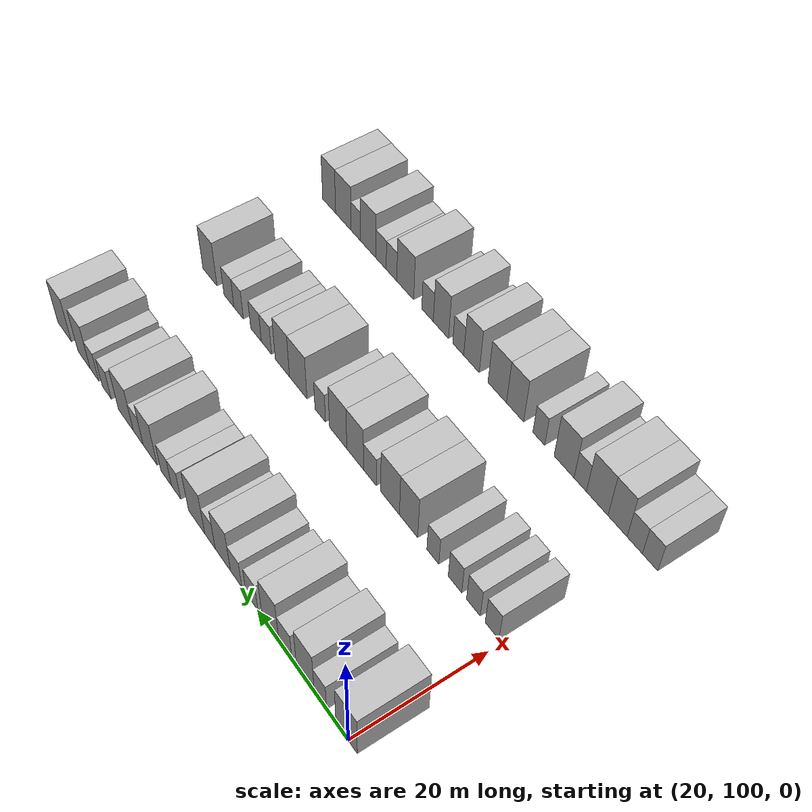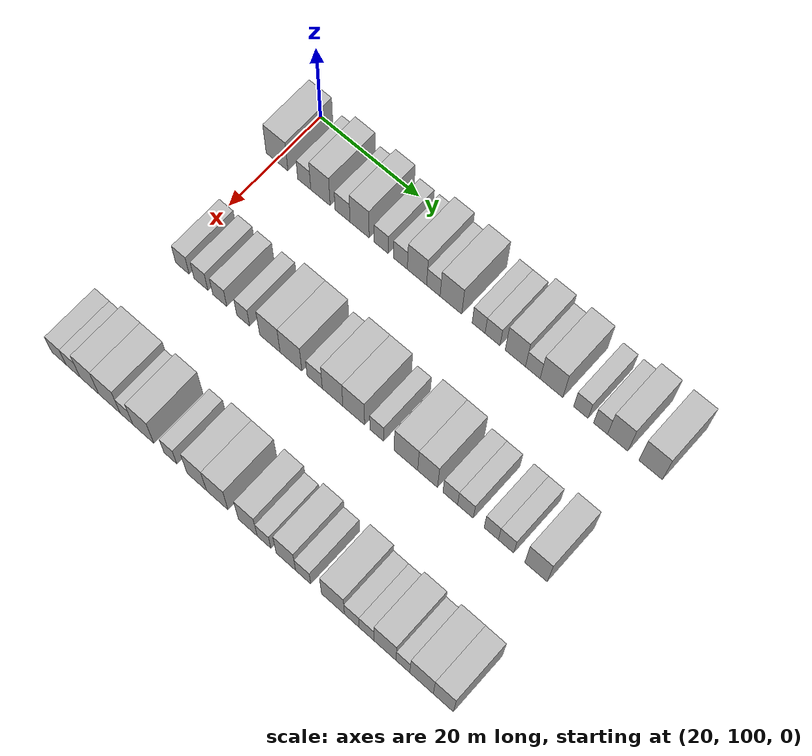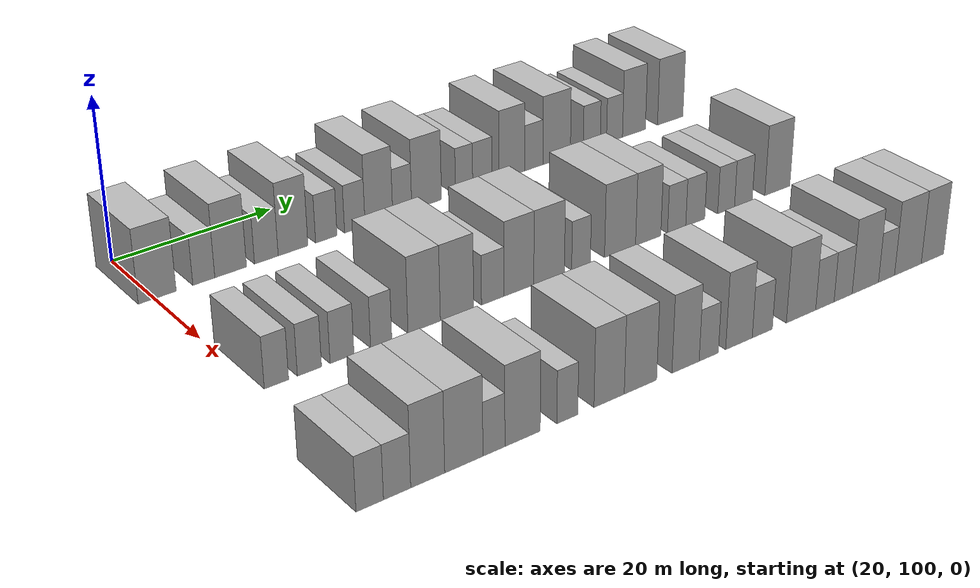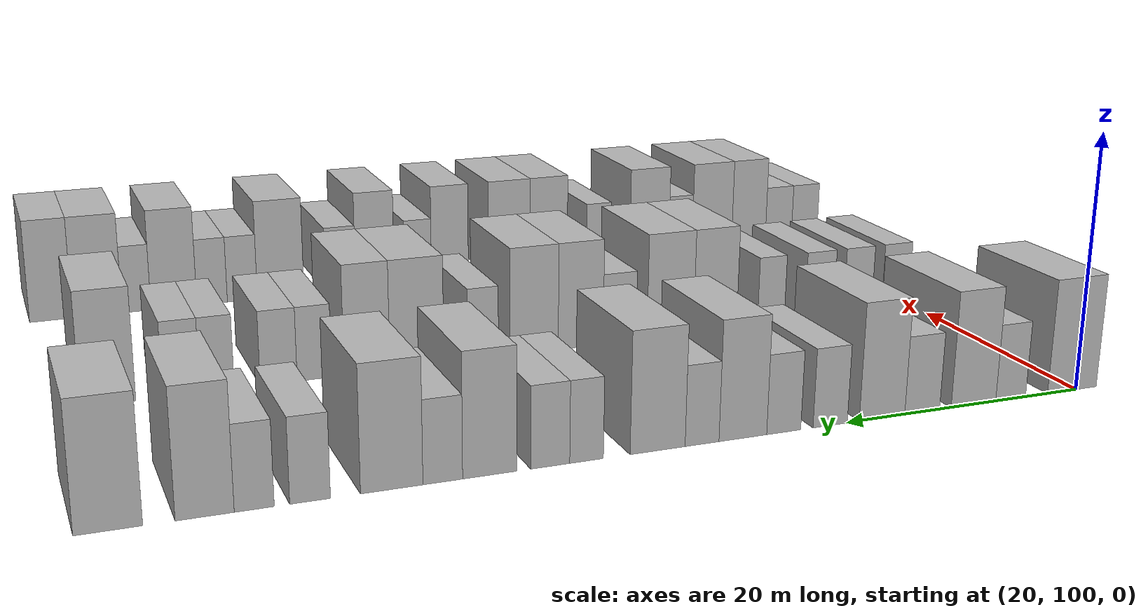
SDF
<sdf version="1.6">
 <world name="default">
  <model name="building_93">
   <static>1</static>
   <pose>25.0000 100.3363 0 0.000000 0.000000 0.000000</pose>
   <link name="link">
    <pose>0 0 4.50 0 0 0</pose>
    <collision name="collision"><geometry><box><size>10.0000 4.4751 9.0000</size></box></geometry></collision>
    <visual name="visual">
     <cast_shadows>0</cast_shadows>
     <geometry><box><size>10.0000 4.4751 9.0000</size></box></geometry>
     <material>
      <script>
       <uri>model://HANNAS_wall/materials/scripts</uri>
       <uri>model://HANNAS_wall/materials/textures</uri>
       <name>vrc/HANNAS_wall</name>
      </script>
     </material>
    </visual>
   </link>
  </model>
  <model name="building_94">
   <static>1</static>
   <pose>25.0000 105.9063 0 0.000000 0.000000 0.000000</pose>
   <link name="link">
    <pose>0 0 3.00 0 0 0</pose>
    <collision name="collision"><geometry><box><size>10.0000 2.6651 6.0000</size></box></geometry></collision>
    <visual name="visual">
     <cast_shadows>0</cast_shadows>
     <geometry><box><size>10.0000 2.6651 6.0000</size></box></geometry>
     <material>
      <script>
       <uri>model://HANNAS_wall/materials/scripts</uri>
       <uri>model://HANNAS_wall/materials/textures</uri>
       <name>vrc/HANNAS_wall</name>
      </script>
     </material>
    </visual>
   </link>
  </model>
  <model name="building_95">
   <static>1</static>
   <pose>25.0000 109.1983 0 0.000000 0.000000 0.000000</pose>
   <link name="link">
    <pose>0 0 4.50 0 0 0</pose>
    <collision name="collision"><geometry><box><size>10.0000 3.9188 9.0000</size></box></geometry></collision>
    <visual name="visual">
     <cast_shadows>0</cast_shadows>
     <geometry><box><size>10.0000 3.9188 9.0000</size></box></geometry>
     <material>
      <script>
       <uri>model://HANNAS_wall/materials/scripts</uri>
       <uri>model://HANNAS_wall/materials/textures</uri>
       <name>vrc/HANNAS_wall</name>
      </script>
     </material>
    </visual>
   </link>
  </model>
  <model name="building_96">
   <static>1</static>
   <pose>25.0000 113.6531 0 0.000000 0.000000 0.000000</pose>
   <link name="link">
    <pose>0 0 3.00 0 0 0</pose>
    <collision name="collision"><geometry><box><size>10.0000 2.9909 6.0000</size></box></geometry></collision>
    <visual name="visual">
     <cast_shadows>0</cast_shadows>
     <geometry><box><size>10.0000 2.9909 6.0000</size></box></geometry>
     <material>
      <script>
       <uri>model://HANNAS_wall/materials/scripts</uri>
       <uri>model://HANNAS_wall/materials/textures</uri>
       <name>vrc/HANNAS_wall</name>
      </script>
     </material>
    </visual>
   </link>
  </model>
  <model name="building_97">
   <static>1</static>
   <pose>25.0000 117.0629 0 0.000000 0.000000 0.000000</pose>
   <link name="link">
    <pose>0 0 4.50 0 0 0</pose>
    <collision name="collision"><geometry><box><size>10.0000 3.8287 9.0000</size></box></geometry></collision>
    <visual name="visual">
     <cast_shadows>0</cast_shadows>
     <geometry><box><size>10.0000 3.8287 9.0000</size></box></geometry>
     <material>
      <script>
       <uri>model://HANNAS_wall/materials/scripts</uri>
       <uri>model://HANNAS_wall/materials/textures</uri>
       <name>vrc/HANNAS_wall</name>
      </script>
     </material>
    </visual>
   </link>
  </model>
  <model name="building_98">
   <static>1</static>
   <pose>25.0000 121.3862 0 0.000000 0.000000 0.000000</pose>
   <link name="link">
    <pose>0 0 3.00 0 0 0</pose>
    <collision name="collision"><geometry><box><size>10.0000 2.8179 6.0000</size></box></geometry></collision>
    <visual name="visual">
     <cast_shadows>0</cast_shadows>
     <geometry><box><size>10.0000 2.8179 6.0000</size></box></geometry>
     <material>
      <script>
       <uri>model://HANNAS_wall/materials/scripts</uri>
       <uri>model://HANNAS_wall/materials/textures</uri>
       <name>vrc/HANNAS_wall</name>
      </script>
     </material>
    </visual>
   </link>
  </model>
  <model name="building_99">
   <static>1</static>
   <pose>25.0000 125.1654 0 0.000000 0.000000 0.000000</pose>
   <link name="link">
    <pose>0 0 3.00 0 0 0</pose>
    <collision name="collision"><geometry><box><size>10.0000 2.7405 6.0000</size></box></geometry></collision>
    <visual name="visual">
     <cast_shadows>0</cast_shadows>
     <geometry><box><size>10.0000 2.7405 6.0000</size></box></geometry>
     <material>
      <script>
       <uri>model://HANNAS_wall/materials/scripts</uri>
       <uri>model://HANNAS_wall/materials/textures</uri>
       <name>vrc/HANNAS_wall</name>
      </script>
     </material>
    </visual>
   </link>
  </model>
  <model name="building_100">
   <static>1</static>
   <pose>25.0000 128.4216 0 0.000000 0.000000 0.000000</pose>
   <link name="link">
    <pose>0 0 4.50 0 0 0</pose>
    <collision name="collision"><geometry><box><size>10.0000 3.7720 9.0000</size></box></geometry></collision>
    <visual name="visual">
     <cast_shadows>0</cast_shadows>
     <geometry><box><size>10.0000 3.7720 9.0000</size></box></geometry>
     <material>
      <script>
       <uri>model://HANNAS_wall/materials/scripts</uri>
       <uri>model://HANNAS_wall/materials/textures</uri>
       <name>vrc/HANNAS_wall</name>
      </script>
     </material>
    </visual>
   </link>
  </model>
  <model name="building_101">
   <static>1</static>
   <pose>25.0000 131.6220 0 0.000000 0.000000 0.000000</pose>
   <link name="link">
    <pose>0 0 3.00 0 0 0</pose>
    <collision name="collision"><geometry><box><size>10.0000 2.6289 6.0000</size></box></geometry></collision>
    <visual name="visual">
     <cast_shadows>0</cast_shadows>
     <geometry><box><size>10.0000 2.6289 6.0000</size></box></geometry>
     <material>
      <script>
       <uri>model://HANNAS_wall/materials/scripts</uri>
       <uri>model://HANNAS_wall/materials/textures</uri>
       <name>vrc/HANNAS_wall</name>
      </script>
     </material>
    </visual>
   </link>
  </model>
  <model name="building_102">
   <static>1</static>
   <pose>25.0000 135.0297 0 0.000000 0.000000 0.000000</pose>
   <link name="link">
    <pose>0 0 4.50 0 0 0</pose>
    <collision name="collision"><geometry><box><size>10.0000 4.1864 9.0000</size></box></geometry></collision>
    <visual name="visual">
     <cast_shadows>0</cast_shadows>
     <geometry><box><size>10.0000 4.1864 9.0000</size></box></geometry>
     <material>
      <script>
       <uri>model://HANNAS_wall/materials/scripts</uri>
       <uri>model://HANNAS_wall/materials/textures</uri>
       <name>vrc/HANNAS_wall</name>
      </script>
     </material>
    </visual>
   </link>
  </model>
  <model name="building_103">
   <static>1</static>
   <pose>25.0000 140.3640 0 0.000000 0.000000 0.000000</pose>
   <link name="link">
    <pose>0 0 3.00 0 0 0</pose>
    <collision name="collision"><geometry><box><size>10.0000 2.4822 6.0000</size></box></geometry></collision>
    <visual name="visual">
     <cast_shadows>0</cast_shadows>
     <geometry><box><size>10.0000 2.4822 6.0000</size></box></geometry>
     <material>
      <script>
       <uri>model://HANNAS_wall/materials/scripts</uri>
       <uri>model://HANNAS_wall/materials/textures</uri>
       <name>vrc/HANNAS_wall</name>
      </script>
     </material>
    </visual>
   </link>
  </model>
  <model name="building_104">
   <static>1</static>
   <pose>25.0000 143.0253 0 0.000000 0.000000 0.000000</pose>
   <link name="link">
    <pose>0 0 3.00 0 0 0</pose>
    <collision name="collision"><geometry><box><size>10.0000 2.8404 6.0000</size></box></geometry></collision>
    <visual name="visual">
     <cast_shadows>0</cast_shadows>
     <geometry><box><size>10.0000 2.8404 6.0000</size></box></geometry>
     <material>
      <script>
       <uri>model://HANNAS_wall/materials/scripts</uri>
       <uri>model://HANNAS_wall/materials/textures</uri>
       <name>vrc/HANNAS_wall</name>
      </script>
     </material>
    </visual>
   </link>
  </model>
  <model name="building_105">
   <static>1</static>
   <pose>25.0000 147.3589 0 0.000000 0.000000 0.000000</pose>
   <link name="link">
    <pose>0 0 4.50 0 0 0</pose>
    <collision name="collision"><geometry><box><size>10.0000 3.8269 9.0000</size></box></geometry></collision>
    <visual name="visual">
     <cast_shadows>0</cast_shadows>
     <geometry><box><size>10.0000 3.8269 9.0000</size></box></geometry>
     <material>
      <script>
       <uri>model://HANNAS_wall/materials/scripts</uri>
       <uri>model://HANNAS_wall/materials/textures</uri>
       <name>vrc/HANNAS_wall</name>
      </script>
     </material>
    </visual>
   </link>
  </model>
  <model name="building_106">
   <static>1</static>
   <pose>25.0000 150.6498 0 0.000000 0.000000 0.000000</pose>
   <link name="link">
    <pose>0 0 3.00 0 0 0</pose>
    <collision name="collision"><geometry><box><size>10.0000 2.7548 6.0000</size></box></geometry></collision>
    <visual name="visual">
     <cast_shadows>0</cast_shadows>
     <geometry><box><size>10.0000 2.7548 6.0000</size></box></geometry>
     <material>
      <script>
       <uri>model://HANNAS_wall/materials/scripts</uri>
       <uri>model://HANNAS_wall/materials/textures</uri>
       <name>vrc/HANNAS_wall</name>
      </script>
     </material>
    </visual>
   </link>
  </model>
  <model name="building_107">
   <static>1</static>
   <pose>25.0000 154.1496 0 0.000000 0.000000 0.000000</pose>
   <link name="link">
    <pose>0 0 4.50 0 0 0</pose>
    <collision name="collision"><geometry><box><size>10.0000 4.2449 9.0000</size></box></geometry></collision>
    <visual name="visual">
     <cast_shadows>0</cast_shadows>
     <geometry><box><size>10.0000 4.2449 9.0000</size></box></geometry>
     <material>
      <script>
       <uri>model://HANNAS_wall/materials/scripts</uri>
       <uri>model://HANNAS_wall/materials/textures</uri>
       <name>vrc/HANNAS_wall</name>
      </script>
     </material>
    </visual>
   </link>
  </model>
  <model name="building_108">
   <static>1</static>
   <pose>25.0000 159.6108 0 0.000000 0.000000 0.000000</pose>
   <link name="link">
    <pose>0 0 3.00 0 0 0</pose>
    <collision name="collision"><geometry><box><size>10.0000 2.6775 6.0000</size></box></geometry></collision>
    <visual name="visual">
     <cast_shadows>0</cast_shadows>
     <geometry><box><size>10.0000 2.6775 6.0000</size></box></geometry>
     <material>
      <script>
       <uri>model://HANNAS_wall/materials/scripts</uri>
       <uri>model://HANNAS_wall/materials/textures</uri>
       <name>vrc/HANNAS_wall</name>
      </script>
     </material>
    </visual>
   </link>
  </model>
  <model name="building_109">
   <static>1</static>
   <pose>25.0000 163.2357 0 0.000000 0.000000 0.000000</pose>
   <link name="link">
    <pose>0 0 3.00 0 0 0</pose>
    <collision name="collision"><geometry><box><size>10.0000 2.5721 6.0000</size></box></geometry></collision>
    <visual name="visual">
     <cast_shadows>0</cast_shadows>
     <geometry><box><size>10.0000 2.5721 6.0000</size></box></geometry>
     <material>
      <script>
       <uri>model://HANNAS_wall/materials/scripts</uri>
       <uri>model://HANNAS_wall/materials/textures</uri>
       <name>vrc/HANNAS_wall</name>
      </script>
     </material>
    </visual>
   </link>
  </model>
  <model name="building_110">
   <static>1</static>
   <pose>25.0000 166.3845 0 0.000000 0.000000 0.000000</pose>
   <link name="link">
    <pose>0 0 4.50 0 0 0</pose>
    <collision name="collision"><geometry><box><size>10.0000 3.7255 9.0000</size></box></geometry></collision>
    <visual name="visual">
     <cast_shadows>0</cast_shadows>
     <geometry><box><size>10.0000 3.7255 9.0000</size></box></geometry>
     <material>
      <script>
       <uri>model://HANNAS_wall/materials/scripts</uri>
       <uri>model://HANNAS_wall/materials/textures</uri>
       <name>vrc/HANNAS_wall</name>
      </script>
     </material>
    </visual>
   </link>
  </model>
  <model name="building_111">
   <static>1</static>
   <pose>25.0000 172.3703 0 0.000000 0.000000 0.000000</pose>
   <link name="link">
    <pose>0 0 4.50 0 0 0</pose>
    <collision name="collision"><geometry><box><size>10.0000 4.2461 9.0000</size></box></geometry></collision>
    <visual name="visual">
     <cast_shadows>0</cast_shadows>
     <geometry><box><size>10.0000 4.2461 9.0000</size></box></geometry>
     <material>
      <script>
       <uri>model://HANNAS_wall/materials/scripts</uri>
       <uri>model://HANNAS_wall/materials/textures</uri>
       <name>vrc/HANNAS_wall</name>
      </script>
     </material>
    </visual>
   </link>
  </model>
  <model name="building_214">
   <static>1</static>
   <pose>47.0000 101.9288 0 0.000000 0.000000 0.000000</pose>
   <link name="link">
    <pose>0 0 3.00 0 0 0</pose>
    <collision name="collision"><geometry><box><size>10.0000 2.7709 6.0000</size></box></geometry></collision>
    <visual name="visual">
     <cast_shadows>0</cast_shadows>
     <geometry><box><size>10.0000 2.7709 6.0000</size></box></geometry>
     <material>
      <script>
       <uri>model://HANNAS_wall/materials/scripts</uri>
       <uri>model://HANNAS_wall/materials/textures</uri>
       <name>vrc/HANNAS_wall</name>
      </script>
     </material>
    </visual>
   </link>
  </model>
  <model name="building_215">
   <static>1</static>
   <pose>47.0000 105.7175 0 0.000000 0.000000 0.000000</pose>
   <link name="link">
    <pose>0 0 3.00 0 0 0</pose>
    <collision name="collision"><geometry><box><size>10.0000 2.8064 6.0000</size></box></geometry></collision>
    <visual name="visual">
     <cast_shadows>0</cast_shadows>
     <geometry><box><size>10.0000 2.8064 6.0000</size></box></geometry>
     <material>
      <script>
       <uri>model://HANNAS_wall/materials/scripts</uri>
       <uri>model://HANNAS_wall/materials/textures</uri>
       <name>vrc/HANNAS_wall</name>
      </script>
     </material>
    </visual>
   </link>
  </model>
  <model name="building_216">
   <static>1</static>
   <pose>47.0000 109.5364 0 0.000000 0.000000 0.000000</pose>
   <link name="link">
    <pose>0 0 3.00 0 0 0</pose>
    <collision name="collision"><geometry><box><size>10.0000 2.8315 6.0000</size></box></geometry></collision>
    <visual name="visual">
     <cast_shadows>0</cast_shadows>
     <geometry><box><size>10.0000 2.8315 6.0000</size></box></geometry>
     <material>
      <script>
       <uri>model://HANNAS_wall/materials/scripts</uri>
       <uri>model://HANNAS_wall/materials/textures</uri>
       <name>vrc/HANNAS_wall</name>
      </script>
     </material>
    </visual>
   </link>
  </model>
  <model name="building_217">
   <static>1</static>
   <pose>47.0000 114.2414 0 0.000000 0.000000 0.000000</pose>
   <link name="link">
    <pose>0 0 3.00 0 0 0</pose>
    <collision name="collision"><geometry><box><size>10.0000 2.5785 6.0000</size></box></geometry></collision>
    <visual name="visual">
     <cast_shadows>0</cast_shadows>
     <geometry><box><size>10.0000 2.5785 6.0000</size></box></geometry>
     <material>
      <script>
       <uri>model://HANNAS_wall/materials/scripts</uri>
       <uri>model://HANNAS_wall/materials/textures</uri>
       <name>vrc/HANNAS_wall</name>
      </script>
     </material>
    </visual>
   </link>
  </model>
  <model name="building_218">
   <static>1</static>
   <pose>47.0000 119.5568 0 0.000000 0.000000 0.000000</pose>
   <link name="link">
    <pose>0 0 4.50 0 0 0</pose>
    <collision name="collision"><geometry><box><size>10.0000 4.0523 9.0000</size></box></geometry></collision>
    <visual name="visual">
     <cast_shadows>0</cast_shadows>
     <geometry><box><size>10.0000 4.0523 9.0000</size></box></geometry>
     <material>
      <script>
       <uri>model://HANNAS_wall/materials/scripts</uri>
       <uri>model://HANNAS_wall/materials/textures</uri>
       <name>vrc/HANNAS_wall</name>
      </script>
     </material>
    </visual>
   </link>
  </model>
  <model name="building_219">
   <static>1</static>
   <pose>47.0000 123.7242 0 0.000000 0.000000 0.000000</pose>
   <link name="link">
    <pose>0 0 4.50 0 0 0</pose>
    <collision name="collision"><geometry><box><size>10.0000 4.2825 9.0000</size></box></geometry></collision>
    <visual name="visual">
     <cast_shadows>0</cast_shadows>
     <geometry><box><size>10.0000 4.2825 9.0000</size></box></geometry>
     <material>
      <script>
       <uri>model://HANNAS_wall/materials/scripts</uri>
       <uri>model://HANNAS_wall/materials/textures</uri>
       <name>vrc/HANNAS_wall</name>
      </script>
     </material>
    </visual>
   </link>
  </model>
  <model name="building_220">
   <static>1</static>
   <pose>47.0000 128.3544 0 0.000000 0.000000 0.000000</pose>
   <link name="link">
    <pose>0 0 3.00 0 0 0</pose>
    <collision name="collision"><geometry><box><size>10.0000 2.9779 6.0000</size></box></geometry></collision>
    <visual name="visual">
     <cast_shadows>0</cast_shadows>
     <geometry><box><size>10.0000 2.9779 6.0000</size></box></geometry>
     <material>
      <script>
       <uri>model://HANNAS_wall/materials/scripts</uri>
       <uri>model://HANNAS_wall/materials/textures</uri>
       <name>vrc/HANNAS_wall</name>
      </script>
     </material>
    </visual>
   </link>
  </model>
  <model name="building_221">
   <static>1</static>
   <pose>47.0000 131.8289 0 0.000000 0.000000 0.000000</pose>
   <link name="link">
    <pose>0 0 4.50 0 0 0</pose>
    <collision name="collision"><geometry><box><size>10.0000 3.9711 9.0000</size></box></geometry></collision>
    <visual name="visual">
     <cast_shadows>0</cast_shadows>
     <geometry><box><size>10.0000 3.9711 9.0000</size></box></geometry>
     <material>
      <script>
       <uri>model://HANNAS_wall/materials/scripts</uri>
       <uri>model://HANNAS_wall/materials/textures</uri>
       <name>vrc/HANNAS_wall</name>
      </script>
     </material>
    </visual>
   </link>
  </model>
  <model name="building_222">
   <static>1</static>
   <pose>47.0000 135.9075 0 0.000000 0.000000 0.000000</pose>
   <link name="link">
    <pose>0 0 4.50 0 0 0</pose>
    <collision name="collision"><geometry><box><size>10.0000 4.1862 9.0000</size></box></geometry></collision>
    <visual name="visual">
     <cast_shadows>0</cast_shadows>
     <geometry><box><size>10.0000 4.1862 9.0000</size></box></geometry>
     <material>
      <script>
       <uri>model://HANNAS_wall/materials/scripts</uri>
       <uri>model://HANNAS_wall/materials/textures</uri>
       <name>vrc/HANNAS_wall</name>
      </script>
     </material>
    </visual>
   </link>
  </model>
  <model name="building_223">
   <static>1</static>
   <pose>47.0000 140.3104 0 0.000000 0.000000 0.000000</pose>
   <link name="link">
    <pose>0 0 3.00 0 0 0</pose>
    <collision name="collision"><geometry><box><size>10.0000 2.6194 6.0000</size></box></geometry></collision>
    <visual name="visual">
     <cast_shadows>0</cast_shadows>
     <geometry><box><size>10.0000 2.6194 6.0000</size></box></geometry>
     <material>
      <script>
       <uri>model://HANNAS_wall/materials/scripts</uri>
       <uri>model://HANNAS_wall/materials/textures</uri>
       <name>vrc/HANNAS_wall</name>
      </script>
     </material>
    </visual>
   </link>
  </model>
  <model name="building_224">
   <static>1</static>
   <pose>47.0000 145.8509 0 0.000000 0.000000 0.000000</pose>
   <link name="link">
    <pose>0 0 4.50 0 0 0</pose>
    <collision name="collision"><geometry><box><size>10.0000 4.4617 9.0000</size></box></geometry></collision>
    <visual name="visual">
     <cast_shadows>0</cast_shadows>
     <geometry><box><size>10.0000 4.4617 9.0000</size></box></geometry>
     <material>
      <script>
       <uri>model://HANNAS_wall/materials/scripts</uri>
       <uri>model://HANNAS_wall/materials/textures</uri>
       <name>vrc/HANNAS_wall</name>
      </script>
     </material>
    </visual>
   </link>
  </model>
  <model name="building_225">
   <static>1</static>
   <pose>47.0000 149.9352 0 0.000000 0.000000 0.000000</pose>
   <link name="link">
    <pose>0 0 4.50 0 0 0</pose>
    <collision name="collision"><geometry><box><size>10.0000 3.7069 9.0000</size></box></geometry></collision>
    <visual name="visual">
     <cast_shadows>0</cast_shadows>
     <geometry><box><size>10.0000 3.7069 9.0000</size></box></geometry>
     <material>
      <script>
       <uri>model://HANNAS_wall/materials/scripts</uri>
       <uri>model://HANNAS_wall/materials/textures</uri>
       <name>vrc/HANNAS_wall</name>
      </script>
     </material>
    </visual>
   </link>
  </model>
  <model name="building_226">
   <static>1</static>
   <pose>47.0000 154.1562 0 0.000000 0.000000 0.000000</pose>
   <link name="link">
    <pose>0 0 3.00 0 0 0</pose>
    <collision name="collision"><geometry><box><size>10.0000 2.7351 6.0000</size></box></geometry></collision>
    <visual name="visual">
     <cast_shadows>0</cast_shadows>
     <geometry><box><size>10.0000 2.7351 6.0000</size></box></geometry>
     <material>
      <script>
       <uri>model://HANNAS_wall/materials/scripts</uri>
       <uri>model://HANNAS_wall/materials/textures</uri>
       <name>vrc/HANNAS_wall</name>
      </script>
     </material>
    </visual>
   </link>
  </model>
  <model name="building_227">
   <static>1</static>
   <pose>47.0000 156.9668 0 0.000000 0.000000 0.000000</pose>
   <link name="link">
    <pose>0 0 3.00 0 0 0</pose>
    <collision name="collision"><geometry><box><size>10.0000 2.8860 6.0000</size></box></geometry></collision>
    <visual name="visual">
     <cast_shadows>0</cast_shadows>
     <geometry><box><size>10.0000 2.8860 6.0000</size></box></geometry>
     <material>
      <script>
       <uri>model://HANNAS_wall/materials/scripts</uri>
       <uri>model://HANNAS_wall/materials/textures</uri>
       <name>vrc/HANNAS_wall</name>
      </script>
     </material>
    </visual>
   </link>
  </model>
  <model name="building_228">
   <static>1</static>
   <pose>47.0000 161.7192 0 0.000000 0.000000 0.000000</pose>
   <link name="link">
    <pose>0 0 3.00 0 0 0</pose>
    <collision name="collision"><geometry><box><size>10.0000 2.6189 6.0000</size></box></geometry></collision>
    <visual name="visual">
     <cast_shadows>0</cast_shadows>
     <geometry><box><size>10.0000 2.6189 6.0000</size></box></geometry>
     <material>
      <script>
       <uri>model://HANNAS_wall/materials/scripts</uri>
       <uri>model://HANNAS_wall/materials/textures</uri>
       <name>vrc/HANNAS_wall</name>
      </script>
     </material>
    </visual>
   </link>
  </model>
  <model name="building_229">
   <static>1</static>
   <pose>47.0000 164.4285 0 0.000000 0.000000 0.000000</pose>
   <link name="link">
    <pose>0 0 3.00 0 0 0</pose>
    <collision name="collision"><geometry><box><size>10.0000 2.7996 6.0000</size></box></geometry></collision>
    <visual name="visual">
     <cast_shadows>0</cast_shadows>
     <geometry><box><size>10.0000 2.7996 6.0000</size></box></geometry>
     <material>
      <script>
       <uri>model://HANNAS_wall/materials/scripts</uri>
       <uri>model://HANNAS_wall/materials/textures</uri>
       <name>vrc/HANNAS_wall</name>
      </script>
     </material>
    </visual>
   </link>
  </model>
  <model name="building_230">
   <static>1</static>
   <pose>47.0000 169.8543 0 0.000000 0.000000 0.000000</pose>
   <link name="link">
    <pose>0 0 4.50 0 0 0</pose>
    <collision name="collision"><geometry><box><size>10.0000 4.0521 9.0000</size></box></geometry></collision>
    <visual name="visual">
     <cast_shadows>0</cast_shadows>
     <geometry><box><size>10.0000 4.0521 9.0000</size></box></geometry>
     <material>
      <script>
       <uri>model://HANNAS_wall/materials/scripts</uri>
       <uri>model://HANNAS_wall/materials/textures</uri>
       <name>vrc/HANNAS_wall</name>
      </script>
     </material>
    </visual>
   </link>
  </model>
  <model name="building_335">
   <static>1</static>
   <pose>69.0000 98.5280 0 0.000000 0.000000 0.000000</pose>
   <link name="link">
    <pose>0 0 3.00 0 0 0</pose>
    <collision name="collision"><geometry><box><size>10.0000 2.9254 6.0000</size></box></geometry></collision>
    <visual name="visual">
     <cast_shadows>0</cast_shadows>
     <geometry><box><size>10.0000 2.9254 6.0000</size></box></geometry>
     <material>
      <script>
       <uri>model://HANNAS_wall/materials/scripts</uri>
       <uri>model://HANNAS_wall/materials/textures</uri>
       <name>vrc/HANNAS_wall</name>
      </script>
     </material>
    </visual>
   </link>
  </model>
  <model name="building_336">
   <static>1</static>
   <pose>69.0000 101.4647 0 0.000000 0.000000 0.000000</pose>
   <link name="link">
    <pose>0 0 3.00 0 0 0</pose>
    <collision name="collision"><geometry><box><size>10.0000 2.9480 6.0000</size></box></geometry></collision>
    <visual name="visual">
     <cast_shadows>0</cast_shadows>
     <geometry><box><size>10.0000 2.9480 6.0000</size></box></geometry>
     <material>
      <script>
       <uri>model://HANNAS_wall/materials/scripts</uri>
       <uri>model://HANNAS_wall/materials/textures</uri>
       <name>vrc/HANNAS_wall</name>
      </script>
     </material>
    </visual>
   </link>
  </model>
  <model name="building_337">
   <static>1</static>
   <pose>69.0000 104.8193 0 0.000000 0.000000 0.000000</pose>
   <link name="link">
    <pose>0 0 4.50 0 0 0</pose>
    <collision name="collision"><geometry><box><size>10.0000 3.7614 9.0000</size></box></geometry></collision>
    <visual name="visual">
     <cast_shadows>0</cast_shadows>
     <geometry><box><size>10.0000 3.7614 9.0000</size></box></geometry>
     <material>
      <script>
       <uri>model://HANNAS_wall/materials/scripts</uri>
       <uri>model://HANNAS_wall/materials/textures</uri>
       <name>vrc/HANNAS_wall</name>
      </script>
     </material>
    </visual>
   </link>
  </model>
  <model name="building_338">
   <static>1</static>
   <pose>69.0000 108.8657 0 0.000000 0.000000 0.000000</pose>
   <link name="link">
    <pose>0 0 4.50 0 0 0</pose>
    <collision name="collision"><geometry><box><size>10.0000 4.3313 9.0000</size></box></geometry></collision>
    <visual name="visual">
     <cast_shadows>0</cast_shadows>
     <geometry><box><size>10.0000 4.3313 9.0000</size></box></geometry>
     <material>
      <script>
       <uri>model://HANNAS_wall/materials/scripts</uri>
       <uri>model://HANNAS_wall/materials/textures</uri>
       <name>vrc/HANNAS_wall</name>
      </script>
     </material>
    </visual>
   </link>
  </model>
  <model name="building_339">
   <static>1</static>
   <pose>69.0000 112.3008 0 0.000000 0.000000 0.000000</pose>
   <link name="link">
    <pose>0 0 3.00 0 0 0</pose>
    <collision name="collision"><geometry><box><size>10.0000 2.5389 6.0000</size></box></geometry></collision>
    <visual name="visual">
     <cast_shadows>0</cast_shadows>
     <geometry><box><size>10.0000 2.5389 6.0000</size></box></geometry>
     <material>
      <script>
       <uri>model://HANNAS_wall/materials/scripts</uri>
       <uri>model://HANNAS_wall/materials/textures</uri>
       <name>vrc/HANNAS_wall</name>
      </script>
     </material>
    </visual>
   </link>
  </model>
  <model name="building_340">
   <static>1</static>
   <pose>69.0000 115.6500 0 0.000000 0.000000 0.000000</pose>
   <link name="link">
    <pose>0 0 4.50 0 0 0</pose>
    <collision name="collision"><geometry><box><size>10.0000 4.1595 9.0000</size></box></geometry></collision>
    <visual name="visual">
     <cast_shadows>0</cast_shadows>
     <geometry><box><size>10.0000 4.1595 9.0000</size></box></geometry>
     <material>
      <script>
       <uri>model://HANNAS_wall/materials/scripts</uri>
       <uri>model://HANNAS_wall/materials/textures</uri>
       <name>vrc/HANNAS_wall</name>
      </script>
     </material>
    </visual>
   </link>
  </model>
  <model name="building_341">
   <static>1</static>
   <pose>69.0000 121.0007 0 0.000000 0.000000 0.000000</pose>
   <link name="link">
    <pose>0 0 3.00 0 0 0</pose>
    <collision name="collision"><geometry><box><size>10.0000 2.5419 6.0000</size></box></geometry></collision>
    <visual name="visual">
     <cast_shadows>0</cast_shadows>
     <geometry><box><size>10.0000 2.5419 6.0000</size></box></geometry>
     <material>
      <script>
       <uri>model://HANNAS_wall/materials/scripts</uri>
       <uri>model://HANNAS_wall/materials/textures</uri>
       <name>vrc/HANNAS_wall</name>
      </script>
     </material>
    </visual>
   </link>
  </model>
  <model name="building_342">
   <static>1</static>
   <pose>69.0000 126.1734 0 0.000000 0.000000 0.000000</pose>
   <link name="link">
    <pose>0 0 4.50 0 0 0</pose>
    <collision name="collision"><geometry><box><size>10.0000 3.8036 9.0000</size></box></geometry></collision>
    <visual name="visual">
     <cast_shadows>0</cast_shadows>
     <geometry><box><size>10.0000 3.8036 9.0000</size></box></geometry>
     <material>
      <script>
       <uri>model://HANNAS_wall/materials/scripts</uri>
       <uri>model://HANNAS_wall/materials/textures</uri>
       <name>vrc/HANNAS_wall</name>
      </script>
     </material>
    </visual>
   </link>
  </model>
  <model name="building_343">
   <static>1</static>
   <pose>69.0000 130.1563 0 0.000000 0.000000 0.000000</pose>
   <link name="link">
    <pose>0 0 4.50 0 0 0</pose>
    <collision name="collision"><geometry><box><size>10.0000 4.1621 9.0000</size></box></geometry></collision>
    <visual name="visual">
     <cast_shadows>0</cast_shadows>
     <geometry><box><size>10.0000 4.1621 9.0000</size></box></geometry>
     <material>
      <script>
       <uri>model://HANNAS_wall/materials/scripts</uri>
       <uri>model://HANNAS_wall/materials/textures</uri>
       <name>vrc/HANNAS_wall</name>
      </script>
     </material>
    </visual>
   </link>
  </model>
  <model name="building_344">
   <static>1</static>
   <pose>69.0000 136.0463 0 0.000000 0.000000 0.000000</pose>
   <link name="link">
    <pose>0 0 4.50 0 0 0</pose>
    <collision name="collision"><geometry><box><size>10.0000 3.6181 9.0000</size></box></geometry></collision>
    <visual name="visual">
     <cast_shadows>0</cast_shadows>
     <geometry><box><size>10.0000 3.6181 9.0000</size></box></geometry>
     <material>
      <script>
       <uri>model://HANNAS_wall/materials/scripts</uri>
       <uri>model://HANNAS_wall/materials/textures</uri>
       <name>vrc/HANNAS_wall</name>
      </script>
     </material>
    </visual>
   </link>
  </model>
  <model name="building_345">
   <static>1</static>
   <pose>69.0000 139.1522 0 0.000000 0.000000 0.000000</pose>
   <link name="link">
    <pose>0 0 3.00 0 0 0</pose>
    <collision name="collision"><geometry><box><size>10.0000 2.5936 6.0000</size></box></geometry></collision>
    <visual name="visual">
     <cast_shadows>0</cast_shadows>
     <geometry><box><size>10.0000 2.5936 6.0000</size></box></geometry>
     <material>
      <script>
       <uri>model://HANNAS_wall/materials/scripts</uri>
       <uri>model://HANNAS_wall/materials/textures</uri>
       <name>vrc/HANNAS_wall</name>
      </script>
     </material>
    </visual>
   </link>
  </model>
  <model name="building_346">
   <static>1</static>
   <pose>69.0000 143.2878 0 0.000000 0.000000 0.000000</pose>
   <link name="link">
    <pose>0 0 4.50 0 0 0</pose>
    <collision name="collision"><geometry><box><size>10.0000 3.6777 9.0000</size></box></geometry></collision>
    <visual name="visual">
     <cast_shadows>0</cast_shadows>
     <geometry><box><size>10.0000 3.6777 9.0000</size></box></geometry>
     <material>
      <script>
       <uri>model://HANNAS_wall/materials/scripts</uri>
       <uri>model://HANNAS_wall/materials/textures</uri>
       <name>vrc/HANNAS_wall</name>
      </script>
     </material>
    </visual>
   </link>
  </model>
  <model name="building_347">
   <static>1</static>
   <pose>69.0000 146.5415 0 0.000000 0.000000 0.000000</pose>
   <link name="link">
    <pose>0 0 3.00 0 0 0</pose>
    <collision name="collision"><geometry><box><size>10.0000 2.8297 6.0000</size></box></geometry></collision>
    <visual name="visual">
     <cast_shadows>0</cast_shadows>
     <geometry><box><size>10.0000 2.8297 6.0000</size></box></geometry>
     <material>
      <script>
       <uri>model://HANNAS_wall/materials/scripts</uri>
       <uri>model://HANNAS_wall/materials/textures</uri>
       <name>vrc/HANNAS_wall</name>
      </script>
     </material>
    </visual>
   </link>
  </model>
  <model name="building_348">
   <static>1</static>
   <pose>69.0000 152.0878 0 0.000000 0.000000 0.000000</pose>
   <link name="link">
    <pose>0 0 4.50 0 0 0</pose>
    <collision name="collision"><geometry><box><size>10.0000 4.2629 9.0000</size></box></geometry></collision>
    <visual name="visual">
     <cast_shadows>0</cast_shadows>
     <geometry><box><size>10.0000 4.2629 9.0000</size></box></geometry>
     <material>
      <script>
       <uri>model://HANNAS_wall/materials/scripts</uri>
       <uri>model://HANNAS_wall/materials/textures</uri>
       <name>vrc/HANNAS_wall</name>
      </script>
     </material>
    </visual>
   </link>
  </model>
  <model name="building_349">
   <static>1</static>
   <pose>69.0000 155.5757 0 0.000000 0.000000 0.000000</pose>
   <link name="link">
    <pose>0 0 3.00 0 0 0</pose>
    <collision name="collision"><geometry><box><size>10.0000 2.7129 6.0000</size></box></geometry></collision>
    <visual name="visual">
     <cast_shadows>0</cast_shadows>
     <geometry><box><size>10.0000 2.7129 6.0000</size></box></geometry>
     <material>
      <script>
       <uri>model://HANNAS_wall/materials/scripts</uri>
       <uri>model://HANNAS_wall/materials/textures</uri>
       <name>vrc/HANNAS_wall</name>
      </script>
     </material>
    </visual>
   </link>
  </model>
  <model name="building_350">
   <static>1</static>
   <pose>69.0000 158.2881 0 0.000000 0.000000 0.000000</pose>
   <link name="link">
    <pose>0 0 3.00 0 0 0</pose>
    <collision name="collision"><geometry><box><size>10.0000 2.7119 6.0000</size></box></geometry></collision>
    <visual name="visual">
     <cast_shadows>0</cast_shadows>
     <geometry><box><size>10.0000 2.7119 6.0000</size></box></geometry>
     <material>
      <script>
       <uri>model://HANNAS_wall/materials/scripts</uri>
       <uri>model://HANNAS_wall/materials/textures</uri>
       <name>vrc/HANNAS_wall</name>
      </script>
     </material>
    </visual>
   </link>
  </model>
  <model name="building_351">
   <static>1</static>
   <pose>69.0000 161.6552 0 0.000000 0.000000 0.000000</pose>
   <link name="link">
    <pose>0 0 4.50 0 0 0</pose>
    <collision name="collision"><geometry><box><size>10.0000 4.0224 9.0000</size></box></geometry></collision>
    <visual name="visual">
     <cast_shadows>0</cast_shadows>
     <geometry><box><size>10.0000 4.0224 9.0000</size></box></geometry>
     <material>
      <script>
       <uri>model://HANNAS_wall/materials/scripts</uri>
       <uri>model://HANNAS_wall/materials/textures</uri>
       <name>vrc/HANNAS_wall</name>
      </script>
     </material>
    </visual>
   </link>
  </model>
  <model name="building_352">
   <static>1</static>
   <pose>69.0000 164.9151 0 0.000000 0.000000 0.000000</pose>
   <link name="link">
    <pose>0 0 3.00 0 0 0</pose>
    <collision name="collision"><geometry><box><size>10.0000 2.4974 6.0000</size></box></geometry></collision>
    <visual name="visual">
     <cast_shadows>0</cast_shadows>
     <geometry><box><size>10.0000 2.4974 6.0000</size></box></geometry>
     <material>
      <script>
       <uri>model://HANNAS_wall/materials/scripts</uri>
       <uri>model://HANNAS_wall/materials/textures</uri>
       <name>vrc/HANNAS_wall</name>
      </script>
     </material>
    </visual>
   </link>
  </model>
  <model name="building_353">
   <static>1</static>
   <pose>69.0000 168.2722 0 0.000000 0.000000 0.000000</pose>
   <link name="link">
    <pose>0 0 4.50 0 0 0</pose>
    <collision name="collision"><geometry><box><size>10.0000 4.2168 9.0000</size></box></geometry></collision>
    <visual name="visual">
     <cast_shadows>0</cast_shadows>
     <geometry><box><size>10.0000 4.2168 9.0000</size></box></geometry>
     <material>
      <script>
       <uri>model://HANNAS_wall/materials/scripts</uri>
       <uri>model://HANNAS_wall/materials/textures</uri>
       <name>vrc/HANNAS_wall</name>
      </script>
     </material>
    </visual>
   </link>
  </model>
  <model name="building_354">
   <static>1</static>
   <pose>69.0000 172.1811 0 0.000000 0.000000 0.000000</pose>
   <link name="link">
    <pose>0 0 4.50 0 0 0</pose>
    <collision name="collision"><geometry><box><size>10.0000 3.6010 9.0000</size></box></geometry></collision>
    <visual name="visual">
     <cast_shadows>0</cast_shadows>
     <geometry><box><size>10.0000 3.6010 9.0000</size></box></geometry>
     <material>
      <script>
       <uri>model://HANNAS_wall/materials/scripts</uri>
       <uri>model://HANNAS_wall/materials/textures</uri>
       <name>vrc/HANNAS_wall</name>
      </script>
     </material>
    </visual>
   </link>
  </model>
 </world>
</sdf>
